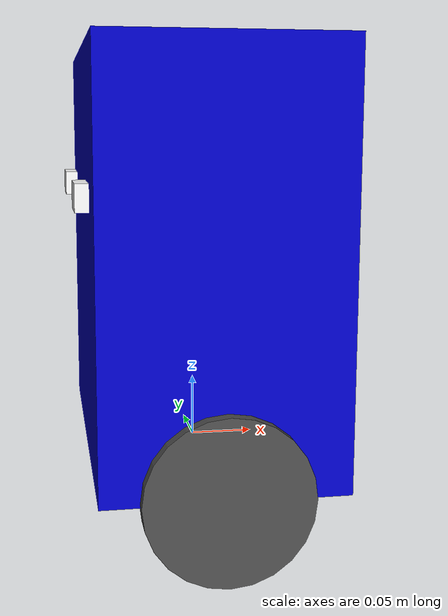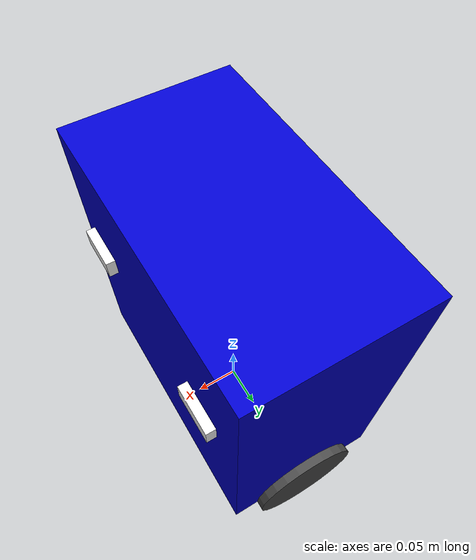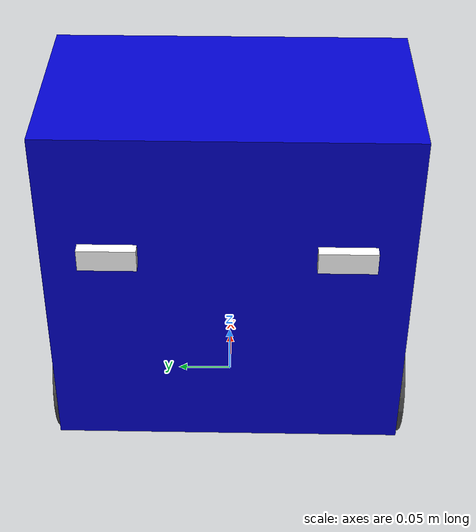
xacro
<?xml version="1.0" ?>

<robot name="obelix" xmlns:xacro="http://www.ros.org/wiki/xacro">

  <xacro:property name="robot" value="obelix"/>

  <xacro:property name="robotbase_length" value="0.18"/>
  <xacro:property name="robotbase_width" value="0.315"/>
  <xacro:property name="robotbase_height" value="0.32"/>

  <xacro:property name="wheel_radius" value=".0615"/>
  <xacro:property name="wheel_width" value=".02"/>

  <xacro:include filename="robot.xacro"/>

</robot>

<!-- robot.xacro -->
<robot name="${robot}" xmlns:xacro="http://www.ros.org/wiki/xacro">

  <xacro:property name="tf_prefix" value=""/>

  <xacro:include filename="colors.xacro"/>
  <xacro:include filename="inertias.xacro"/>
  <xacro:include filename="sensors.xacro"/>

  <link name="${tf_prefix}base_link"/>

  <joint name="${tf_prefix}base_joint" type="fixed">
    <parent link="${tf_prefix}base_link"/>
    <child link="${tf_prefix}robotbase"/>
    <origin xyz="0.0 0.0 0.16" rpy="0 0 0"/>
  </joint>

  <link name="${tf_prefix}robotbase">
    <xacro:box_inertia m="4" w="${robotbase_length}" h="${robotbase_width}" d="${robotbase_height}"/>
    <visual>
      <origin xyz="0.0 0.0 0.0" rpy="0.0 0.0 0.0"/>
      <geometry>
        <box size="${robotbase_length} ${robotbase_width} ${robotbase_height}"/>
      </geometry>
      <material name="blue"/>
    </visual>

    <collision>
      <origin xyz="0.0 0.0 0.0" rpy="0.0 0.0 0.0"/>
      <geometry>
        <box size="${robotbase_length+.05} ${robotbase_width+.05} ${robotbase_height+.05}"/>
      </geometry>
    </collision>

  </link>

  <joint name="${tf_prefix}wheel_left_joint" type="continuous">
    <parent link="${tf_prefix}robotbase"/>
    <child link="${tf_prefix}wheel_left_link"/>
    <origin xyz="0.0 ${robotbase_width/2} -${robotbase_width/2}" rpy="0 0 0"/>
    <axis xyz="0 1 0"/>
    <dynamics damping="0.7"/>
  </joint>

  <link name="${tf_prefix}wheel_left_link">
    <xacro:cylinder_inertia m="0.2" r="${wheel_radius}" h="${wheel_width}"/>
    <visual>
      <origin xyz="0 0 0" rpy="1.57 0 0"/>
      <geometry>
        <cylinder length="${wheel_width}" radius="${wheel_radius}"/>
      </geometry>
      <material name="dark"/>
    </visual>
  </link>

  <joint name="${tf_prefix}wheel_right_joint" type="continuous">
    <parent link="${tf_prefix}robotbase"/>
    <child link="${tf_prefix}wheel_right_link"/>
    <origin xyz="0.0 -${robotbase_width/2} -${robotbase_width/2}" rpy="0 0 0"/>
    <axis xyz="0 1 0"/>
    <dynamics damping="0.7"/>
  </joint>

  <link name="${tf_prefix}wheel_right_link">
    <xacro:cylinder_inertia m="0.2" r="${wheel_radius}" h="${wheel_width}"/>
    <visual>
      <origin xyz="0 0 0" rpy="1.57 0 0"/>
      <geometry>
        <cylinder length="${wheel_width}" radius="${wheel_radius}"/>
      </geometry>
      <material name="dark"/>
    </visual>
  </link>

  <!--Sensors-->
  <xacro:hcsr04_sensor name="sensor_front_left" xyz="0.096 0.1 0.05" rpy="0 0 0"/>
  <xacro:hcsr04_sensor name="sensor_front_right" xyz="0.096 -0.1 0.05" rpy="0 0 0"/>
  <xacro:hcsr04_sensor name="sensor_back_left" xyz="-0.096 0.1 0.05" rpy="0 0 0"/>
  <xacro:hcsr04_sensor name="sensor_back_right" xyz="-0.096 -0.1 0.05" rpy="0 0 0"/>

</robot>

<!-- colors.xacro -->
<robot>

  <material name="black">
    <color rgba="0.0 0.0 0.0 1.0"/>
  </material>

  <material name="dark">
    <color rgba="0.3 0.3 0.3 1.0"/>
  </material>

  <material name="light_black">
    <color rgba="0.4 0.4 0.4 1.0"/>
  </material>

  <material name="blue">
    <color rgba="0.0 0.0 0.8 1.0"/>
  </material>

  <material name="green">
    <color rgba="0.0 0.8 0.0 1.0"/>
  </material>

  <material name="grey">
    <color rgba="0.5 0.5 0.5 1.0"/>
  </material>

  <material name="orange">
    <color rgba="1.0 0.4235 0.0392 1.0"/>
  </material>

  <material name="brown">
    <color rgba="0.8706 0.8118 0.7647 1.0"/>
  </material>

  <material name="red">
    <color rgba="0.8 0.0 0.0 1.0"/>
  </material>

  <material name="white">
    <color rgba="1.0 1.0 1.0 1.0"/>
  </material>

</robot>

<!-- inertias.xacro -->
<robot xmlns:xacro="http://www.ros.org/wiki/xacro">

  <!--Interial macros-->
  <xacro:macro name="cylinder_inertia" params="m r h">
    <inertial>
      <mass value="${m}"/>
      <inertia ixx="${m*(3*r*r+h*h)/12}" ixy="0" ixz="0" iyy="${m*(3*r*r+h*h)/12}" iyz="0" izz="${m*r*r/2}"/>
    </inertial>
  </xacro:macro>

  <xacro:macro name="box_inertia" params="m w h d">
    <inertial>
      <mass value="${m}"/>
      <inertia ixx="${m / 12.0 * (d*d + h*h)}" ixy="0.0" ixz="0.0" iyy="${m / 12.0 * (w*w + h*h)}" iyz="0.0" izz="${m / 12.0 * (w*w + d*d)}"/>
    </inertial>
  </xacro:macro>

  <xacro:macro name="sphere_inertia" params="m r">
    <inertial>
      <mass value="${m}"/>
      <inertia ixx="${2.0*m*(r*r)/5.0}" ixy="0.0" ixz="0.0" iyy="${2.0*m*(r*r)/5.0}" iyz="0.0" izz="${2.0*m*(r*r)/5.0}"/>
    </inertial>
  </xacro:macro>

</robot>

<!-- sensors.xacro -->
<robot xmlns:xacro="http://www.ros.org/wiki/xacro">

  <!--Sensors macros-->
  <xacro:macro name="hcsr04_sensor" params="name xyz rpy">
    <joint name="${tf_prefix}${name}_joint" type="fixed">
      <parent link="${tf_prefix}robotbase"/>
      <child link="${tf_prefix}${name}"/>
      <origin xyz="${xyz}" rpy="${rpy}"/>
    </joint>

    <link name="${tf_prefix}${name}">
      <visual>
        <origin xyz="0 0 0" rpy="0 0 0"/>
        <geometry>
          <box size="0.01 0.05 0.02"/>
        </geometry>
        <material name="white"/>
      </visual>
    </link>
  </xacro:macro>

</robot>
